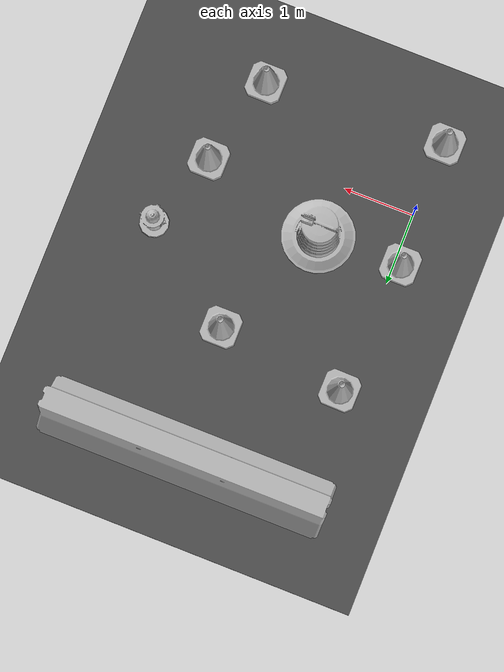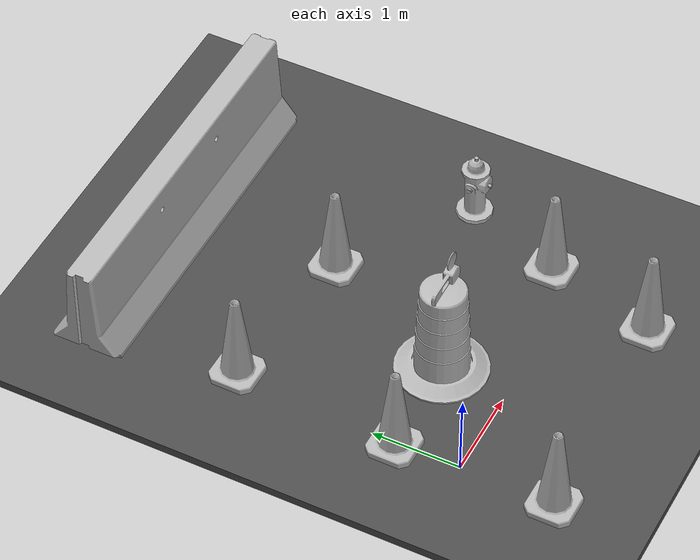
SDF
<sdf version="1.7">
 <world name="default">
  <light name="sun" type="directional">
   <pose>0 0 10 0 -0 0</pose>
   <diffuse>0.8 0.8 0.8 1</diffuse>
   <specular>0.2 0.2 0.2 1</specular>
   <attenuation>
    <range>1000</range>
    <constant>0.9</constant>
    <linear>0.01</linear>
    <quadratic>0.001</quadratic>
   </attenuation>
   <direction>-0.5 0.1 -0.9</direction>
   <spot><inner_angle>0</inner_angle><outer_angle>0</outer_angle><falloff>0</falloff></spot>
  </light>
  <model name="ground_plane">
   <static>1</static>
   <link name="link">
    <collision name="collision">
     <geometry><plane><normal>0 0 1</normal><size>100 100</size></plane></geometry>
     <surface>
      <contact><collide_bitmask>65535</collide_bitmask></contact>
      <friction><ode><mu>100</mu><mu2>50</mu2></ode></friction>
     </surface>
    </collision>
    <visual name="visual">
     <cast_shadows>0</cast_shadows>
     <geometry><plane><normal>0 0 1</normal><size>100 100</size></plane></geometry>
     <material>
      <script><uri>file://media/materials/scripts/gazebo.material</uri><name>Gazebo/Grey</name></script>
     </material>
    </visual>
   </link>
  </model>
  <gravity>0 0 -9.8</gravity>
  <magnetic_field>6e-06 2.3e-05 -4.2e-05</magnetic_field>
  <atmosphere type="adiabatic"/>
  <physics type="ode">
   <max_step_size>0.001</max_step_size>
   <real_time_factor>1</real_time_factor>
   <real_time_update_rate>1000</real_time_update_rate>
  </physics>
  <scene><ambient>0.4 0.4 0.4 1</ambient><background>0.7 0.7 0.7 1</background><shadows>1</shadows></scene>
  <spherical_coordinates>
   <surface_model>EARTH_WGS84</surface_model>
   <latitude_deg>0</latitude_deg>
   <longitude_deg>0</longitude_deg>
   <elevation>0</elevation>
   <heading_deg>0</heading_deg>
  </spherical_coordinates>
  <model name="Construction Cone">
   <link name="link">
    <collision name="collision">
     <geometry>
      <mesh><scale>10 10 10</scale><uri>model://construction_cone/meshes/construction_cone.dae</uri></mesh>
     </geometry>
    </collision>
    <visual name="visual">
     <geometry>
      <mesh><scale>10 10 10</scale><uri>model://construction_cone/meshes/construction_cone.dae</uri></mesh>
     </geometry>
    </visual>
    <inertial>
     <inertia><ixx>1</ixx><ixy>0</ixy><ixz>0</ixz><iyy>1</iyy><iyz>0</iyz><izz>1</izz></inertia>
     <mass>1</mass>
    </inertial>
   </link>
   <pose>0.060359 2.60071 0.05 1e-06 -1e-06 -0.014724</pose>
  </model>
  <model name="Construction Cone_0">
   <link name="link">
    <collision name="collision">
     <geometry>
      <mesh><scale>10 10 10</scale><uri>model://construction_cone/meshes/construction_cone.dae</uri></mesh>
     </geometry>
    </collision>
    <visual name="visual">
     <geometry>
      <mesh><scale>10 10 10</scale><uri>model://construction_cone/meshes/construction_cone.dae</uri></mesh>
     </geometry>
    </visual>
    <inertial>
     <inertia><ixx>1</ixx><ixy>0</ixy><ixz>0</ixz><iyy>1</iyy><iyz>0</iyz><izz>1</izz></inertia>
     <mass>1</mass>
    </inertial>
   </link>
   <pose>1.86604 2.38635 0.050001 1e-06 -2e-06 -9.4e-05</pose>
  </model>
  <model name="Construction Barrel">
   <link name="link">
    <inertial>
     <pose>0 0 0.4 0 -0 0</pose>
     <mass>500</mass>
     <inertia><ixx>51.2096</ixx><iyy>51.2096</iyy><izz>25</izz><ixy>0</ixy><ixz>0</ixz><iyz>0</iyz></inertia>
    </inertial>
    <collision name="collision">
     <geometry><mesh><uri>model://construction_barrel/meshes/construction_barrel.dae</uri></mesh></geometry>
    </collision>
    <visual name="visual">
     <geometry><mesh><uri>model://construction_barrel/meshes/construction_barrel.dae</uri></mesh></geometry>
    </visual>
   </link>
   <pose>1.09562 0.745875 0.049999 -1e-06 -2e-06 0.000244</pose>
  </model>
  <model name="Construction Cone_1">
   <link name="link">
    <collision name="collision">
     <geometry>
      <mesh><scale>10 10 10</scale><uri>model://construction_cone/meshes/construction_cone.dae</uri></mesh>
     </geometry>
    </collision>
    <visual name="visual">
     <geometry>
      <mesh><scale>10 10 10</scale><uri>model://construction_cone/meshes/construction_cone.dae</uri></mesh>
     </geometry>
    </visual>
    <inertial>
     <inertia><ixx>1</ixx><ixy>0</ixy><ixz>0</ixz><iyy>1</iyy><iyz>0</iyz><izz>1</izz></inertia>
     <mass>1</mass>
    </inertial>
   </link>
   <pose>2.52706 -0.958212 0.049991 1e-06 -0 -0.006989</pose>
  </model>
  <model name="Construction Cone_2">
   <link name="link">
    <collision name="collision">
     <geometry>
      <mesh><scale>10 10 10</scale><uri>model://construction_cone/meshes/construction_cone.dae</uri></mesh>
     </geometry>
    </collision>
    <visual name="visual">
     <geometry>
      <mesh><scale>10 10 10</scale><uri>model://construction_cone/meshes/construction_cone.dae</uri></mesh>
     </geometry>
    </visual>
    <inertial>
     <inertia><ixx>1</ixx><ixy>0</ixy><ixz>0</ixz><iyy>1</iyy><iyz>0</iyz><izz>1</izz></inertia>
     <mass>1</mass>
    </inertial>
   </link>
   <pose>2.86842 0.306181 0.049992 -2e-06 1e-06 -0.006958</pose>
  </model>
  <model name="Construction Cone_3">
   <link name="link">
    <collision name="collision">
     <geometry>
      <mesh><scale>10 10 10</scale><uri>model://construction_cone/meshes/construction_cone.dae</uri></mesh>
     </geometry>
    </collision>
    <visual name="visual">
     <geometry>
      <mesh><scale>10 10 10</scale><uri>model://construction_cone/meshes/construction_cone.dae</uri></mesh>
     </geometry>
    </visual>
    <inertial>
     <inertia><ixx>1</ixx><ixy>0</ixy><ixz>0</ixz><iyy>1</iyy><iyz>0</iyz><izz>1</izz></inertia>
     <mass>1</mass>
    </inertial>
   </link>
   <pose>-0.084878 0.706057 0.05 0 -0 -0.006883</pose>
  </model>
  <model name="Construction Cone_4">
   <link name="link">
    <collision name="collision">
     <geometry>
      <mesh><scale>10 10 10</scale><uri>model://construction_cone/meshes/construction_cone.dae</uri></mesh>
     </geometry>
    </collision>
    <visual name="visual">
     <geometry>
      <mesh><scale>10 10 10</scale><uri>model://construction_cone/meshes/construction_cone.dae</uri></mesh>
     </geometry>
    </visual>
    <inertial>
     <inertia><ixx>1</ixx><ixy>0</ixy><ixz>0</ixz><iyy>1</iyy><iyz>0</iyz><izz>1</izz></inertia>
     <mass>1</mass>
    </inertial>
   </link>
   <pose>-0.050852 -1.05958 0.05 0 -0 -0.006887</pose>
  </model>
  <model name="fire_hydrant">
   <static>1</static>
   <link name="link">
    <collision name="collision">
     <geometry><mesh><uri>model://fire_hydrant/meshes/fire_hydrant.dae</uri></mesh></geometry>
    </collision>
    <visual name="visual">
     <geometry><mesh><uri>model://fire_hydrant/meshes/fire_hydrant.dae</uri></mesh></geometry>
    </visual>
   </link>
   <pose>3.23395 1.39366 0 0 -0 0</pose>
  </model>
  <model name="jersey_barrier">
   <static>1</static>
   <link name="link">
    <visual name="visual">
     <geometry><mesh><uri>model://jersey_barrier/meshes/jersey_barrier.dae</uri></mesh></geometry>
    </visual>
    <collision name="upright">
     <pose>0 0 0.5715 0 -0 0</pose>
     <geometry><box><size>4.06542 0.3063 1.143</size></box></geometry>
    </collision>
    <collision name="base">
     <pose>0 0 0.032258 0 -0 0</pose>
     <geometry><box><size>4.06542 0.8107 0.064516</size></box></geometry>
    </collision>
    <collision name="base2">
     <pose>0 0 0.1 0 -0 0</pose>
     <geometry><box><size>4.06542 0.65 0.1</size></box></geometry>
    </collision>
    <collision name="base3">
     <pose>0 0 0.2 0 -0 0</pose>
     <geometry><box><size>4.06542 0.5 0.1</size></box></geometry>
    </collision>
    <collision name="left-angle">
     <pose>0 -0.224 0.2401 0.9 -0 0</pose>
     <geometry><box><size>4.06542 0.5 0.064516</size></box></geometry>
    </collision>
    <collision name="right-angle">
     <pose>0 0.224 0.2401 -0.9 0 0</pose>
     <geometry><box><size>4.06542 0.5 0.064516</size></box></geometry>
    </collision>
   </link>
   <pose>1.65982 4.18864 0 0 -0 0</pose>
  </model>
  <model name="asphalt_plane">
   <static>1</static>
   <link name="link">
    <collision name="collision"><geometry><box><size>20 20 0.1</size></box></geometry></collision>
    <visual name="visual">
     <cast_shadows>0</cast_shadows>
     <geometry><box><size>20 20 0.1</size></box></geometry>
     <material>
      <script>
       <uri>model://asphalt_plane/materials/scripts</uri>
       <uri>model://asphalt_plane/materials/textures</uri>
       <name>vrc/asphalt</name>
      </script>
     </material>
    </visual>
   </link>
   <pose>0.745044 0.567376 0 0 -0 0</pose>
  </model>
 </world>
</sdf>
